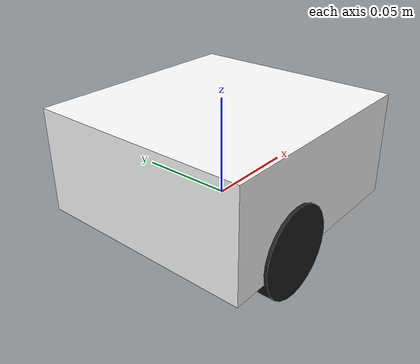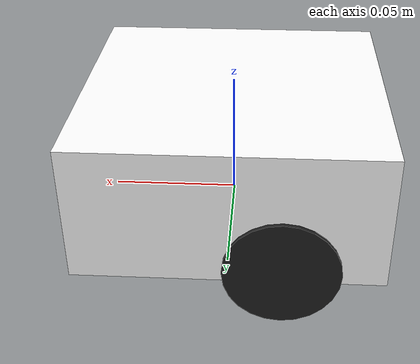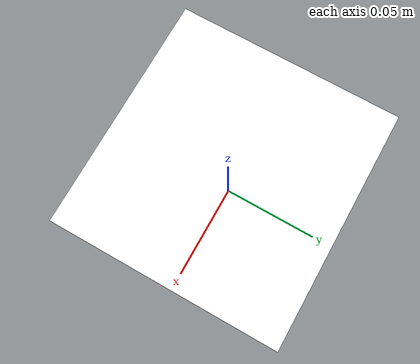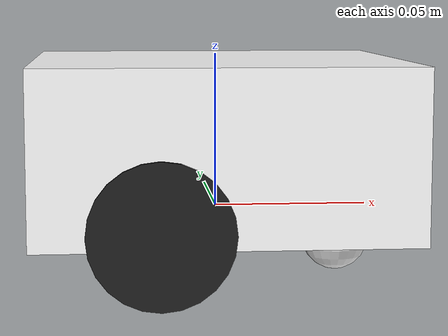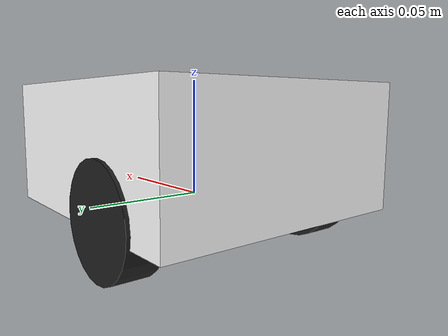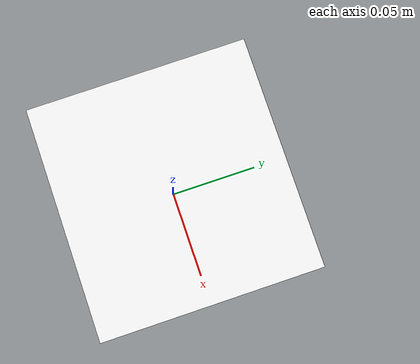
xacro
<?xml version="1.0"?>

<robot xmlns:xacro="https://www.ros.org/wiki/xacro" name="Michedi">

    <xacro:include filename="$(find ros_basics_2019)/urdf/macros.xacro" />
    <xacro:include filename="$(find ros_basics_2019)/urdf/materials.xacro" />

<gazebo reference="link_base">
 <material>Gazebo/White</material>
</gazebo>
<gazebo reference="link_wheel_right">
 <material>Gazebo/Black</material>
</gazebo>
<gazebo reference="link_wheel_left">
 <material>Gazebo/Black</material>
</gazebo>

    <!-- Design your robot here -->

<link name="link_base">
    <inertial>
        <mass value="0.216"/>
        <origin rpy="0 0 0" xyz="0 0 0.022"/>
        <xacro:box_inertia m="0.216" x="0.117" y="0.112" z="0.053"/>
    </inertial>

<collision name="collision_base">
<geometry>
	<box size="0.117 0.112 0.053"/>
</geometry>
</collision>

<visual name="visual_base">
<origin rpy="0 0 0" xyz="0 0 0.022"/>
<geometry>
        <box size="0.117 0.112 0.053"/>
</geometry>
<material name="white"/>
</visual>

<collision name="collision_cone">
<origin xyz="0.055 0 -0.011"/>
<geometry>
	<sphere radius="0.011"/>
</geometry>
</collision>

<visual name="visual_cone">
<origin xyz="0.04 0 -0.011"/>
<geometry>
        <sphere radius="0.011"/>
</geometry>
</visual>
</link>

<link name="link_wheel_right">
    <inertial>
        <mass value="0.027"/>
        <origin rpy="1.5707 0 0" xyz="0 0 0"/>
      	<xacro:cylinder_inertia m="0.027" r="0.022" h="0.015" />
</inertial>
    <collision name="link_wheel_right_collision">
        <origin rpy="1.5707 0 0" xyz="0 0 0" />
        <geometry>
            <cylinder length="0.015" radius="0.022"/>
        </geometry>
    </collision>

    <visual name="link_wheel_right_visual">
        <origin rpy="1.5707 0 0" xyz="0 0 0"/>
        <geometry>
            <cylinder length="0.015" radius="0.022"/>
        </geometry>
    </visual>
</link>

<link name="link_wheel_left">
    <inertial>
        <mass value="0.027"/>
        <origin rpy="1.5707 0 0" xyz="0 0 0"/>
        <xacro:cylinder_inertia m="0.027" r="0.022" h="0.015" />
    </inertial>
    <collision name="link_wheel_left_collision">
        <origin rpy="1.5707 0 0" xyz="0 0 0" />
        <geometry>
            <cylinder length="0.015" radius="0.022"/>
        </geometry>
    </collision>

    <visual name="link_wheel_left_visual">
        <origin rpy="1.5707 0 0" xyz="0 0 0"/>
        <geometry>
            <cylinder length="0.015" radius="0.022"/>
        </geometry>
    </visual>
</link>

<joint name="joint_left_wheel" type="continuous">
    <origin rpy="0 0 0" xyz="-0.02 0.05 0"/>
    <child link="link_wheel_left" />
    <parent link="link_base"/>
    <axis rpy="0 0 0" xyz="0 1 0"/>
     <dynamics damping="0.0" friction="0.0" />

</joint>

<joint name="joint_right_wheel" type="continuous">
    <origin rpy="0 0 0" xyz="-0.02 -0.05 0"/>
    <child link="link_wheel_right" />
    <parent link="link_base"/>
    <axis rpy="0 0 0" xyz="0 1 0"/>
    <dynamics damping="0.0" friction="0.0" />

</joint>

    <!-- Below you will find samples of gazebo plugins you may want to use. -->
    <!-- These should be adapted to your robot's design -->
    <gazebo reference="YOUR_SENSOR_LINK">
        <sensor type="ray" name="laser_right">
            <pose>0 0 0 0 0 0</pose>
            <ray>
                <scan>
                    <horizontal>
                        <samples>13</samples>
                        <resolution>1</resolution>
                        <min_angle>-1.571</min_angle>
                        <max_angle>1.571</max_angle>
                    </horizontal>
                </scan>
                <range>
                    <!-- You can edit adapt these to your robot's size -->
                    <min>0.0005</min>
                    <max>0.04</max>
                    <resolution>0.0001</resolution>
                </range>
            </ray>
            <plugin name="laser" filename="libgazebo_ros_laser.so" >
                <topicName>YOUR_ROBOT_LASER/scan</topicName>
                <frameName>YOUR_ROBOT_LASER_LINK</frameName>
            </plugin>
            <always_on>1</always_on>
            <update_rate>10</update_rate>
            <visualize>true</visualize>
        </sensor>
    </gazebo>

    <gazebo>
        <plugin name="differential_drive_controller" filename="libgazebo_ros_diff_drive.so">
            <alwaysOn>true</alwaysOn>
            <updateRate>20</updateRate>
            <leftJoint>joint_left_wheel</leftJoint>
            <rightJoint>joint_right_wheel</rightJoint>
            <wheelSeparation>=0.08</wheelSeparation>
            <wheelDiameter>0.044</wheelDiameter>

            <commandTopic>cmd_vel</commandTopic>
            <odometryTopic>odom</odometryTopic>
            <odometryFrame>odom</odometryFrame>

            <robotBaseFrame>link_base</robotBaseFrame>
        </plugin>
    </gazebo>

</robot>

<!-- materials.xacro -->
<robot name="ThymioGrp11">

    <material name="white">
        <color rgba="1 1 1 1"/>
    </material>

    <material name="black">
        <color rgba="0 0 0 1"/>
    </material>

    <material name="blue">
        <color rgba="0 0 0.8 1"/>
    </material>

    <material name="yellow">
        <color rgba="1 1 0 1"/>
    </material>

    <material name="green">
        <color rgba="0 1 0 1"/>
    </material>

</robot>
